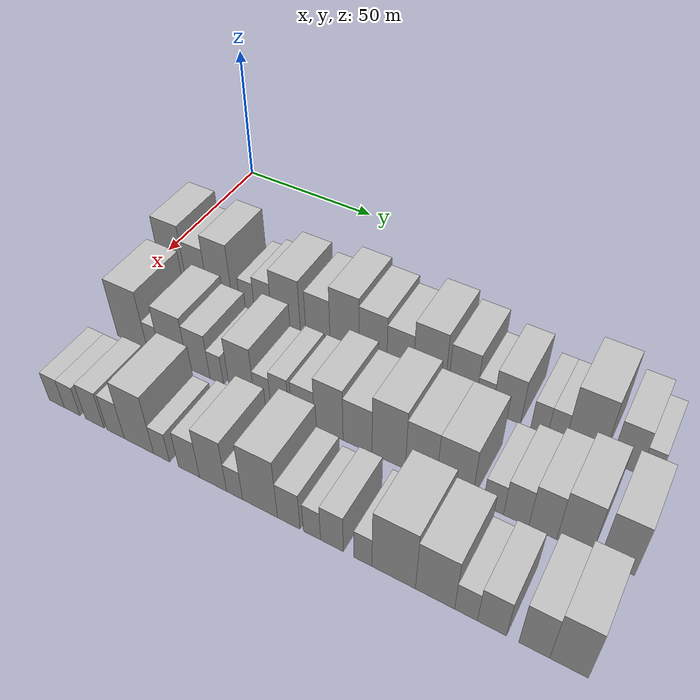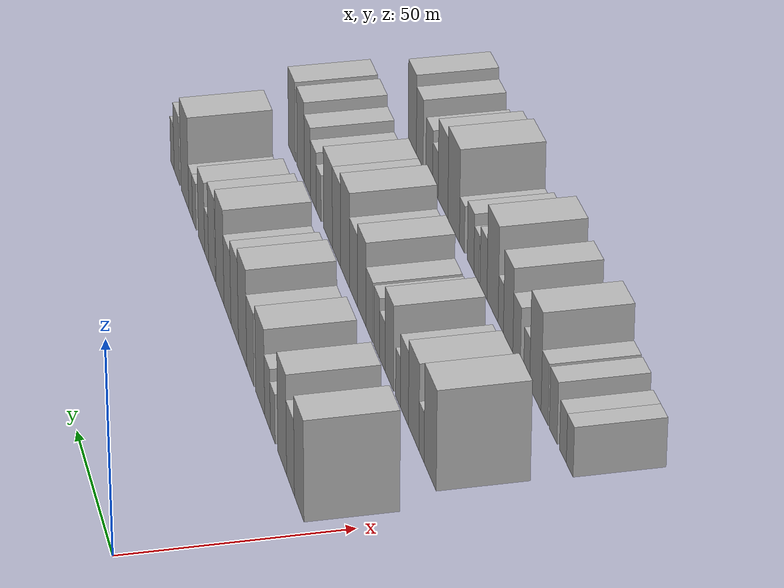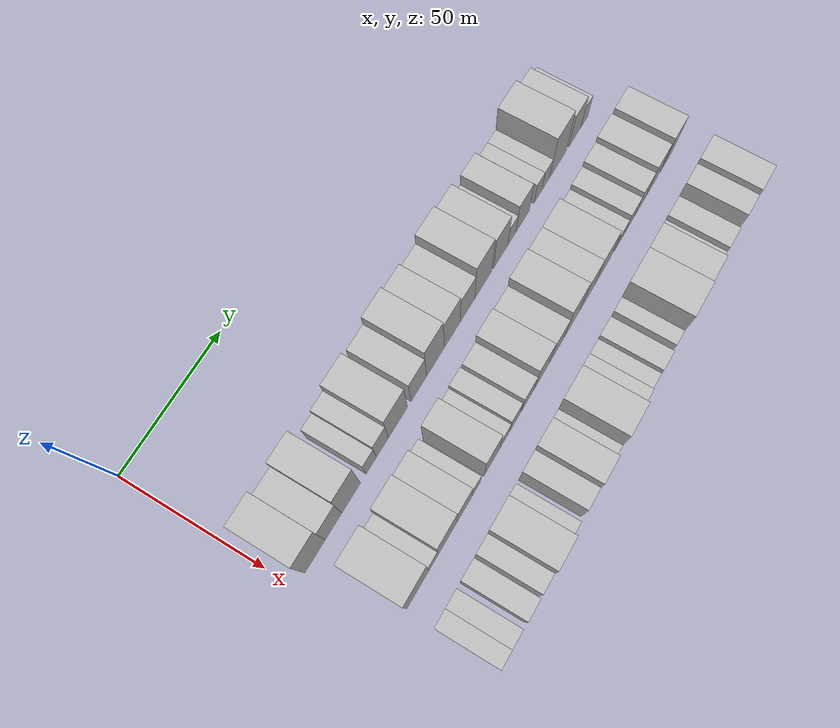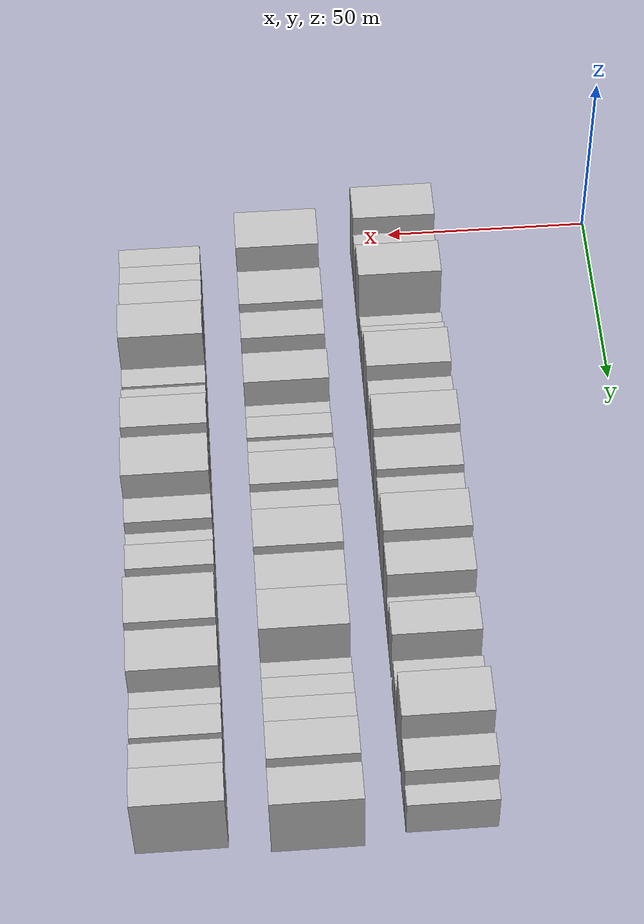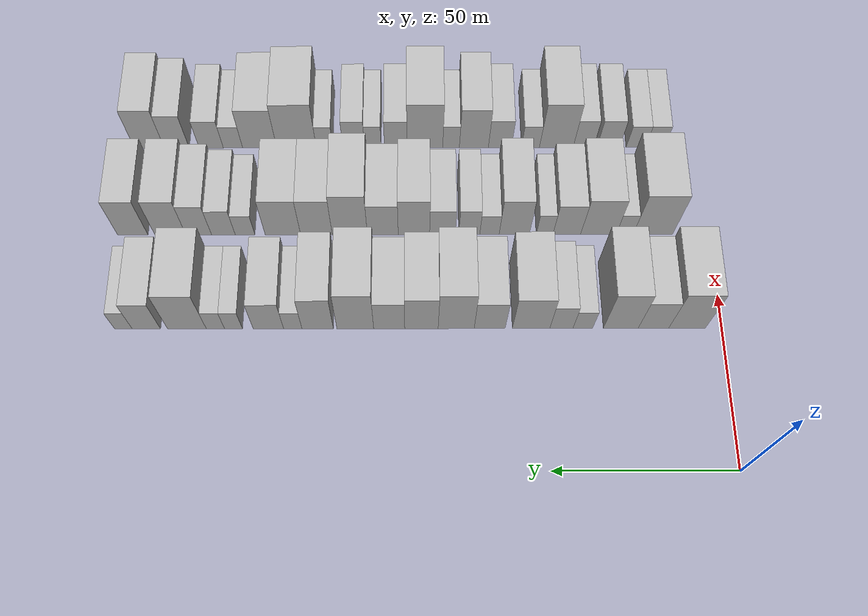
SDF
<sdf version="1.6">
 <world name="default">
  <model name="building_40">
   <static>1</static>
   <pose>50.0000 9.7776 0 0.000000 0.000000 0.000000</pose>
   <link name="link">
    <pose>0 0 12.00 0 0 0</pose>
    <collision name="collision"><geometry><box><size>20.0000 10.2907 24.0000</size></box></geometry></collision>
    <visual name="visual">
     <cast_shadows>0</cast_shadows>
     <geometry><box><size>20.0000 10.2907 24.0000</size></box></geometry>
     <material>
      <script>
       <uri>model://HANNAS_wall/materials/scripts</uri>
       <uri>model://HANNAS_wall/materials/textures</uri>
       <name>vrc/HANNAS_wall</name>
      </script>
     </material>
    </visual>
   </link>
  </model>
  <model name="building_41">
   <static>1</static>
   <pose>50.0000 19.1825 0 0.000000 0.000000 0.000000</pose>
   <link name="link">
    <pose>0 0 9.00 0 0 0</pose>
    <collision name="collision"><geometry><box><size>20.0000 8.5192 18.0000</size></box></geometry></collision>
    <visual name="visual">
     <cast_shadows>0</cast_shadows>
     <geometry><box><size>20.0000 8.5192 18.0000</size></box></geometry>
     <material>
      <script>
       <uri>model://HANNAS_wall/materials/scripts</uri>
       <uri>model://HANNAS_wall/materials/textures</uri>
       <name>vrc/HANNAS_wall</name>
      </script>
     </material>
    </visual>
   </link>
  </model>
  <model name="building_42">
   <static>1</static>
   <pose>50.0000 28.3160 0 0.000000 0.000000 0.000000</pose>
   <link name="link">
    <pose>0 0 12.00 0 0 0</pose>
    <collision name="collision"><geometry><box><size>20.0000 9.7476 24.0000</size></box></geometry></collision>
    <visual name="visual">
     <cast_shadows>0</cast_shadows>
     <geometry><box><size>20.0000 9.7476 24.0000</size></box></geometry>
     <material>
      <script>
       <uri>model://HANNAS_wall/materials/scripts</uri>
       <uri>model://HANNAS_wall/materials/textures</uri>
       <name>vrc/HANNAS_wall</name>
      </script>
     </material>
    </visual>
   </link>
  </model>
  <model name="building_43">
   <static>1</static>
   <pose>50.0000 38.9368 0 0.000000 0.000000 0.000000</pose>
   <link name="link">
    <pose>0 0 6.00 0 0 0</pose>
    <collision name="collision"><geometry><box><size>20.0000 5.4942 12.0000</size></box></geometry></collision>
    <visual name="visual">
     <cast_shadows>0</cast_shadows>
     <geometry><box><size>20.0000 5.4942 12.0000</size></box></geometry>
     <material>
      <script>
       <uri>model://HANNAS_wall/materials/scripts</uri>
       <uri>model://HANNAS_wall/materials/textures</uri>
       <name>vrc/HANNAS_wall</name>
      </script>
     </material>
    </visual>
   </link>
  </model>
  <model name="building_44">
   <static>1</static>
   <pose>50.0000 44.9304 0 0.000000 0.000000 0.000000</pose>
   <link name="link">
    <pose>0 0 7.50 0 0 0</pose>
    <collision name="collision"><geometry><box><size>20.0000 6.4929 15.0000</size></box></geometry></collision>
    <visual name="visual">
     <cast_shadows>0</cast_shadows>
     <geometry><box><size>20.0000 6.4929 15.0000</size></box></geometry>
     <material>
      <script>
       <uri>model://HANNAS_wall/materials/scripts</uri>
       <uri>model://HANNAS_wall/materials/textures</uri>
       <name>vrc/HANNAS_wall</name>
      </script>
     </material>
    </visual>
   </link>
  </model>
  <model name="building_45">
   <static>1</static>
   <pose>50.0000 53.4059 0 0.000000 0.000000 0.000000</pose>
   <link name="link">
    <pose>0 0 10.50 0 0 0</pose>
    <collision name="collision"><geometry><box><size>20.0000 10.4582 21.0000</size></box></geometry></collision>
    <visual name="visual">
     <cast_shadows>0</cast_shadows>
     <geometry><box><size>20.0000 10.4582 21.0000</size></box></geometry>
     <material>
      <script>
       <uri>model://HANNAS_wall/materials/scripts</uri>
       <uri>model://HANNAS_wall/materials/textures</uri>
       <name>vrc/HANNAS_wall</name>
      </script>
     </material>
    </visual>
   </link>
  </model>
  <model name="building_46">
   <static>1</static>
   <pose>50.0000 64.9694 0 0.000000 0.000000 0.000000</pose>
   <link name="link">
    <pose>0 0 9.00 0 0 0</pose>
    <collision name="collision"><geometry><box><size>20.0000 8.6687 18.0000</size></box></geometry></collision>
    <visual name="visual">
     <cast_shadows>0</cast_shadows>
     <geometry><box><size>20.0000 8.6687 18.0000</size></box></geometry>
     <material>
      <script>
       <uri>model://HANNAS_wall/materials/scripts</uri>
       <uri>model://HANNAS_wall/materials/textures</uri>
       <name>vrc/HANNAS_wall</name>
      </script>
     </material>
    </visual>
   </link>
  </model>
  <model name="building_47">
   <static>1</static>
   <pose>50.0000 74.3400 0 0.000000 0.000000 0.000000</pose>
   <link name="link">
    <pose>0 0 12.00 0 0 0</pose>
    <collision name="collision"><geometry><box><size>20.0000 10.0726 24.0000</size></box></geometry></collision>
    <visual name="visual">
     <cast_shadows>0</cast_shadows>
     <geometry><box><size>20.0000 10.0726 24.0000</size></box></geometry>
     <material>
      <script>
       <uri>model://HANNAS_wall/materials/scripts</uri>
       <uri>model://HANNAS_wall/materials/textures</uri>
       <name>vrc/HANNAS_wall</name>
      </script>
     </material>
    </visual>
   </link>
  </model>
  <model name="building_48">
   <static>1</static>
   <pose>50.0000 84.0408 0 0.000000 0.000000 0.000000</pose>
   <link name="link">
    <pose>0 0 10.50 0 0 0</pose>
    <collision name="collision"><geometry><box><size>20.0000 9.3290 21.0000</size></box></geometry></collision>
    <visual name="visual">
     <cast_shadows>0</cast_shadows>
     <geometry><box><size>20.0000 9.3290 21.0000</size></box></geometry>
     <material>
      <script>
       <uri>model://HANNAS_wall/materials/scripts</uri>
       <uri>model://HANNAS_wall/materials/textures</uri>
       <name>vrc/HANNAS_wall</name>
      </script>
     </material>
    </visual>
   </link>
  </model>
  <model name="building_49">
   <static>1</static>
   <pose>50.0000 93.0449 0 0.000000 0.000000 0.000000</pose>
   <link name="link">
    <pose>0 0 9.00 0 0 0</pose>
    <collision name="collision"><geometry><box><size>20.0000 8.6791 18.0000</size></box></geometry></collision>
    <visual name="visual">
     <cast_shadows>0</cast_shadows>
     <geometry><box><size>20.0000 8.6791 18.0000</size></box></geometry>
     <material>
      <script>
       <uri>model://HANNAS_wall/materials/scripts</uri>
       <uri>model://HANNAS_wall/materials/textures</uri>
       <name>vrc/HANNAS_wall</name>
      </script>
     </material>
    </visual>
   </link>
  </model>
  <model name="building_50">
   <static>1</static>
   <pose>50.0000 102.5092 0 0.000000 0.000000 0.000000</pose>
   <link name="link">
    <pose>0 0 12.00 0 0 0</pose>
    <collision name="collision"><geometry><box><size>20.0000 10.2495 24.0000</size></box></geometry></collision>
    <visual name="visual">
     <cast_shadows>0</cast_shadows>
     <geometry><box><size>20.0000 10.2495 24.0000</size></box></geometry>
     <material>
      <script>
       <uri>model://HANNAS_wall/materials/scripts</uri>
       <uri>model://HANNAS_wall/materials/textures</uri>
       <name>vrc/HANNAS_wall</name>
      </script>
     </material>
    </visual>
   </link>
  </model>
  <model name="building_51">
   <static>1</static>
   <pose>50.0000 113.0198 0 0.000000 0.000000 0.000000</pose>
   <link name="link">
    <pose>0 0 10.50 0 0 0</pose>
    <collision name="collision"><geometry><box><size>20.0000 8.7718 21.0000</size></box></geometry></collision>
    <visual name="visual">
     <cast_shadows>0</cast_shadows>
     <geometry><box><size>20.0000 8.7718 21.0000</size></box></geometry>
     <material>
      <script>
       <uri>model://HANNAS_wall/materials/scripts</uri>
       <uri>model://HANNAS_wall/materials/textures</uri>
       <name>vrc/HANNAS_wall</name>
      </script>
     </material>
    </visual>
   </link>
  </model>
  <model name="building_52">
   <static>1</static>
   <pose>50.0000 119.9617 0 0.000000 0.000000 0.000000</pose>
   <link name="link">
    <pose>0 0 6.00 0 0 0</pose>
    <collision name="collision"><geometry><box><size>20.0000 5.1119 12.0000</size></box></geometry></collision>
    <visual name="visual">
     <cast_shadows>0</cast_shadows>
     <geometry><box><size>20.0000 5.1119 12.0000</size></box></geometry>
     <material>
      <script>
       <uri>model://HANNAS_wall/materials/scripts</uri>
       <uri>model://HANNAS_wall/materials/textures</uri>
       <name>vrc/HANNAS_wall</name>
      </script>
     </material>
    </visual>
   </link>
  </model>
  <model name="building_53">
   <static>1</static>
   <pose>50.0000 126.7689 0 0.000000 0.000000 0.000000</pose>
   <link name="link">
    <pose>0 0 9.00 0 0 0</pose>
    <collision name="collision"><geometry><box><size>20.0000 8.5026 18.0000</size></box></geometry></collision>
    <visual name="visual">
     <cast_shadows>0</cast_shadows>
     <geometry><box><size>20.0000 8.5026 18.0000</size></box></geometry>
     <material>
      <script>
       <uri>model://HANNAS_wall/materials/scripts</uri>
       <uri>model://HANNAS_wall/materials/textures</uri>
       <name>vrc/HANNAS_wall</name>
      </script>
     </material>
    </visual>
   </link>
  </model>
  <model name="building_54">
   <static>1</static>
   <pose>50.0000 136.5120 0 0.000000 0.000000 0.000000</pose>
   <link name="link">
    <pose>0 0 6.00 0 0 0</pose>
    <collision name="collision"><geometry><box><size>20.0000 4.9835 12.0000</size></box></geometry></collision>
    <visual name="visual">
     <cast_shadows>0</cast_shadows>
     <geometry><box><size>20.0000 4.9835 12.0000</size></box></geometry>
     <material>
      <script>
       <uri>model://HANNAS_wall/materials/scripts</uri>
       <uri>model://HANNAS_wall/materials/textures</uri>
       <name>vrc/HANNAS_wall</name>
      </script>
     </material>
    </visual>
   </link>
  </model>
  <model name="building_55">
   <static>1</static>
   <pose>50.0000 141.5558 0 0.000000 0.000000 0.000000</pose>
   <link name="link">
    <pose>0 0 6.00 0 0 0</pose>
    <collision name="collision"><geometry><box><size>20.0000 5.1041 12.0000</size></box></geometry></collision>
    <visual name="visual">
     <cast_shadows>0</cast_shadows>
     <geometry><box><size>20.0000 5.1041 12.0000</size></box></geometry>
     <material>
      <script>
       <uri>model://HANNAS_wall/materials/scripts</uri>
       <uri>model://HANNAS_wall/materials/textures</uri>
       <name>vrc/HANNAS_wall</name>
      </script>
     </material>
    </visual>
   </link>
  </model>
  <model name="building_56">
   <static>1</static>
   <pose>50.0000 149.5086 0 0.000000 0.000000 0.000000</pose>
   <link name="link">
    <pose>0 0 12.00 0 0 0</pose>
    <collision name="collision"><geometry><box><size>20.0000 10.8015 24.0000</size></box></geometry></collision>
    <visual name="visual">
     <cast_shadows>0</cast_shadows>
     <geometry><box><size>20.0000 10.8015 24.0000</size></box></geometry>
     <material>
      <script>
       <uri>model://HANNAS_wall/materials/scripts</uri>
       <uri>model://HANNAS_wall/materials/textures</uri>
       <name>vrc/HANNAS_wall</name>
      </script>
     </material>
    </visual>
   </link>
  </model>
  <model name="building_57">
   <static>1</static>
   <pose>50.0000 160.8490 0 0.000000 0.000000 0.000000</pose>
   <link name="link">
    <pose>0 0 9.00 0 0 0</pose>
    <collision name="collision"><geometry><box><size>20.0000 7.8793 18.0000</size></box></geometry></collision>
    <visual name="visual">
     <cast_shadows>0</cast_shadows>
     <geometry><box><size>20.0000 7.8793 18.0000</size></box></geometry>
     <material>
      <script>
       <uri>model://HANNAS_wall/materials/scripts</uri>
       <uri>model://HANNAS_wall/materials/textures</uri>
       <name>vrc/HANNAS_wall</name>
      </script>
     </material>
    </visual>
   </link>
  </model>
  <model name="building_58">
   <static>1</static>
   <pose>50.0000 167.2366 0 0.000000 0.000000 0.000000</pose>
   <link name="link">
    <pose>0 0 6.00 0 0 0</pose>
    <collision name="collision"><geometry><box><size>20.0000 4.8959 12.0000</size></box></geometry></collision>
    <visual name="visual">
     <cast_shadows>0</cast_shadows>
     <geometry><box><size>20.0000 4.8959 12.0000</size></box></geometry>
     <material>
      <script>
       <uri>model://HANNAS_wall/materials/scripts</uri>
       <uri>model://HANNAS_wall/materials/textures</uri>
       <name>vrc/HANNAS_wall</name>
      </script>
     </material>
    </visual>
   </link>
  </model>
  <model name="building_118">
   <static>1</static>
   <pose>79.0000 16.5934 0 0.000000 0.000000 0.000000</pose>
   <link name="link">
    <pose>0 0 12.00 0 0 0</pose>
    <collision name="collision"><geometry><box><size>20.0000 11.5009 24.0000</size></box></geometry></collision>
    <visual name="visual">
     <cast_shadows>0</cast_shadows>
     <geometry><box><size>20.0000 11.5009 24.0000</size></box></geometry>
     <material>
      <script>
       <uri>model://HANNAS_wall/materials/scripts</uri>
       <uri>model://HANNAS_wall/materials/textures</uri>
       <name>vrc/HANNAS_wall</name>
      </script>
     </material>
    </visual>
   </link>
  </model>
  <model name="building_119">
   <static>1</static>
   <pose>79.0000 24.8157 0 0.000000 0.000000 0.000000</pose>
   <link name="link">
    <pose>0 0 6.00 0 0 0</pose>
    <collision name="collision"><geometry><box><size>20.0000 4.9436 12.0000</size></box></geometry></collision>
    <visual name="visual">
     <cast_shadows>0</cast_shadows>
     <geometry><box><size>20.0000 4.9436 12.0000</size></box></geometry>
     <material>
      <script>
       <uri>model://HANNAS_wall/materials/scripts</uri>
       <uri>model://HANNAS_wall/materials/textures</uri>
       <name>vrc/HANNAS_wall</name>
      </script>
     </material>
    </visual>
   </link>
  </model>
  <model name="building_120">
   <static>1</static>
   <pose>79.0000 32.4561 0 0.000000 0.000000 0.000000</pose>
   <link name="link">
    <pose>0 0 10.50 0 0 0</pose>
    <collision name="collision"><geometry><box><size>20.0000 10.3373 21.0000</size></box></geometry></collision>
    <visual name="visual">
     <cast_shadows>0</cast_shadows>
     <geometry><box><size>20.0000 10.3373 21.0000</size></box></geometry>
     <material>
      <script>
       <uri>model://HANNAS_wall/materials/scripts</uri>
       <uri>model://HANNAS_wall/materials/textures</uri>
       <name>vrc/HANNAS_wall</name>
      </script>
     </material>
    </visual>
   </link>
  </model>
  <model name="building_121">
   <static>1</static>
   <pose>79.0000 41.6530 0 0.000000 0.000000 0.000000</pose>
   <link name="link">
    <pose>0 0 9.00 0 0 0</pose>
    <collision name="collision"><geometry><box><size>20.0000 8.0564 18.0000</size></box></geometry></collision>
    <visual name="visual">
     <cast_shadows>0</cast_shadows>
     <geometry><box><size>20.0000 8.0564 18.0000</size></box></geometry>
     <material>
      <script>
       <uri>model://HANNAS_wall/materials/scripts</uri>
       <uri>model://HANNAS_wall/materials/textures</uri>
       <name>vrc/HANNAS_wall</name>
      </script>
     </material>
    </visual>
   </link>
  </model>
  <model name="building_122">
   <static>1</static>
   <pose>79.0000 48.1084 0 0.000000 0.000000 0.000000</pose>
   <link name="link">
    <pose>0 0 6.00 0 0 0</pose>
    <collision name="collision"><geometry><box><size>20.0000 4.8543 12.0000</size></box></geometry></collision>
    <visual name="visual">
     <cast_shadows>0</cast_shadows>
     <geometry><box><size>20.0000 4.8543 12.0000</size></box></geometry>
     <material>
      <script>
       <uri>model://HANNAS_wall/materials/scripts</uri>
       <uri>model://HANNAS_wall/materials/textures</uri>
       <name>vrc/HANNAS_wall</name>
      </script>
     </material>
    </visual>
   </link>
  </model>
  <model name="building_123">
   <static>1</static>
   <pose>79.0000 56.9386 0 0.000000 0.000000 0.000000</pose>
   <link name="link">
    <pose>0 0 10.50 0 0 0</pose>
    <collision name="collision"><geometry><box><size>20.0000 8.8061 21.0000</size></box></geometry></collision>
    <visual name="visual">
     <cast_shadows>0</cast_shadows>
     <geometry><box><size>20.0000 8.8061 21.0000</size></box></geometry>
     <material>
      <script>
       <uri>model://HANNAS_wall/materials/scripts</uri>
       <uri>model://HANNAS_wall/materials/textures</uri>
       <name>vrc/HANNAS_wall</name>
      </script>
     </material>
    </visual>
   </link>
  </model>
  <model name="building_124">
   <static>1</static>
   <pose>79.0000 64.1504 0 0.000000 0.000000 0.000000</pose>
   <link name="link">
    <pose>0 0 6.00 0 0 0</pose>
    <collision name="collision"><geometry><box><size>20.0000 5.6175 12.0000</size></box></geometry></collision>
    <visual name="visual">
     <cast_shadows>0</cast_shadows>
     <geometry><box><size>20.0000 5.6175 12.0000</size></box></geometry>
     <material>
      <script>
       <uri>model://HANNAS_wall/materials/scripts</uri>
       <uri>model://HANNAS_wall/materials/textures</uri>
       <name>vrc/HANNAS_wall</name>
      </script>
     </material>
    </visual>
   </link>
  </model>
  <model name="building_125">
   <static>1</static>
   <pose>79.0000 70.0178 0 0.000000 0.000000 0.000000</pose>
   <link name="link">
    <pose>0 0 7.50 0 0 0</pose>
    <collision name="collision"><geometry><box><size>20.0000 6.1174 15.0000</size></box></geometry></collision>
    <visual name="visual">
     <cast_shadows>0</cast_shadows>
     <geometry><box><size>20.0000 6.1174 15.0000</size></box></geometry>
     <material>
      <script>
       <uri>model://HANNAS_wall/materials/scripts</uri>
       <uri>model://HANNAS_wall/materials/textures</uri>
       <name>vrc/HANNAS_wall</name>
      </script>
     </material>
    </visual>
   </link>
  </model>
  <model name="building_126">
   <static>1</static>
   <pose>79.0000 77.8075 0 0.000000 0.000000 0.000000</pose>
   <link name="link">
    <pose>0 0 7.50 0 0 0</pose>
    <collision name="collision"><geometry><box><size>20.0000 7.4620 15.0000</size></box></geometry></collision>
    <visual name="visual">
     <cast_shadows>0</cast_shadows>
     <geometry><box><size>20.0000 7.4620 15.0000</size></box></geometry>
     <material>
      <script>
       <uri>model://HANNAS_wall/materials/scripts</uri>
       <uri>model://HANNAS_wall/materials/textures</uri>
       <name>vrc/HANNAS_wall</name>
      </script>
     </material>
    </visual>
   </link>
  </model>
  <model name="building_127">
   <static>1</static>
   <pose>79.0000 86.0922 0 0.000000 0.000000 0.000000</pose>
   <link name="link">
    <pose>0 0 10.50 0 0 0</pose>
    <collision name="collision"><geometry><box><size>20.0000 9.1073 21.0000</size></box></geometry></collision>
    <visual name="visual">
     <cast_shadows>0</cast_shadows>
     <geometry><box><size>20.0000 9.1073 21.0000</size></box></geometry>
     <material>
      <script>
       <uri>model://HANNAS_wall/materials/scripts</uri>
       <uri>model://HANNAS_wall/materials/textures</uri>
       <name>vrc/HANNAS_wall</name>
      </script>
     </material>
    </visual>
   </link>
  </model>
  <model name="building_128">
   <static>1</static>
   <pose>79.0000 95.1321 0 0.000000 0.000000 0.000000</pose>
   <link name="link">
    <pose>0 0 9.00 0 0 0</pose>
    <collision name="collision"><geometry><box><size>20.0000 8.9725 18.0000</size></box></geometry></collision>
    <visual name="visual">
     <cast_shadows>0</cast_shadows>
     <geometry><box><size>20.0000 8.9725 18.0000</size></box></geometry>
     <material>
      <script>
       <uri>model://HANNAS_wall/materials/scripts</uri>
       <uri>model://HANNAS_wall/materials/textures</uri>
       <name>vrc/HANNAS_wall</name>
      </script>
     </material>
    </visual>
   </link>
  </model>
  <model name="building_129">
   <static>1</static>
   <pose>79.0000 104.7010 0 0.000000 0.000000 0.000000</pose>
   <link name="link">
    <pose>0 0 12.00 0 0 0</pose>
    <collision name="collision"><geometry><box><size>20.0000 10.1653 24.0000</size></box></geometry></collision>
    <visual name="visual">
     <cast_shadows>0</cast_shadows>
     <geometry><box><size>20.0000 10.1653 24.0000</size></box></geometry>
     <material>
      <script>
       <uri>model://HANNAS_wall/materials/scripts</uri>
       <uri>model://HANNAS_wall/materials/textures</uri>
       <name>vrc/HANNAS_wall</name>
      </script>
     </material>
    </visual>
   </link>
  </model>
  <model name="building_130">
   <static>1</static>
   <pose>79.0000 114.3850 0 0.000000 0.000000 0.000000</pose>
   <link name="link">
    <pose>0 0 10.50 0 0 0</pose>
    <collision name="collision"><geometry><box><size>20.0000 9.2029 21.0000</size></box></geometry></collision>
    <visual name="visual">
     <cast_shadows>0</cast_shadows>
     <geometry><box><size>20.0000 9.2029 21.0000</size></box></geometry>
     <material>
      <script>
       <uri>model://HANNAS_wall/materials/scripts</uri>
       <uri>model://HANNAS_wall/materials/textures</uri>
       <name>vrc/HANNAS_wall</name>
      </script>
     </material>
    </visual>
   </link>
  </model>
  <model name="building_131">
   <static>1</static>
   <pose>79.0000 124.1394 0 0.000000 0.000000 0.000000</pose>
   <link name="link">
    <pose>0 0 10.50 0 0 0</pose>
    <collision name="collision"><geometry><box><size>20.0000 10.3058 21.0000</size></box></geometry></collision>
    <visual name="visual">
     <cast_shadows>0</cast_shadows>
     <geometry><box><size>20.0000 10.3058 21.0000</size></box></geometry>
     <material>
      <script>
       <uri>model://HANNAS_wall/materials/scripts</uri>
       <uri>model://HANNAS_wall/materials/textures</uri>
       <name>vrc/HANNAS_wall</name>
      </script>
     </material>
    </visual>
   </link>
  </model>
  <model name="building_132">
   <static>1</static>
   <pose>79.0000 135.1444 0 0.000000 0.000000 0.000000</pose>
   <link name="link">
    <pose>0 0 6.00 0 0 0</pose>
    <collision name="collision"><geometry><box><size>20.0000 5.7042 12.0000</size></box></geometry></collision>
    <visual name="visual">
     <cast_shadows>0</cast_shadows>
     <geometry><box><size>20.0000 5.7042 12.0000</size></box></geometry>
     <material>
      <script>
       <uri>model://HANNAS_wall/materials/scripts</uri>
       <uri>model://HANNAS_wall/materials/textures</uri>
       <name>vrc/HANNAS_wall</name>
      </script>
     </material>
    </visual>
   </link>
  </model>
  <model name="building_133">
   <static>1</static>
   <pose>79.0000 141.4276 0 0.000000 0.000000 0.000000</pose>
   <link name="link">
    <pose>0 0 7.50 0 0 0</pose>
    <collision name="collision"><geometry><box><size>20.0000 6.8623 15.0000</size></box></geometry></collision>
    <visual name="visual">
     <cast_shadows>0</cast_shadows>
     <geometry><box><size>20.0000 6.8623 15.0000</size></box></geometry>
     <material>
      <script>
       <uri>model://HANNAS_wall/materials/scripts</uri>
       <uri>model://HANNAS_wall/materials/textures</uri>
       <name>vrc/HANNAS_wall</name>
      </script>
     </material>
    </visual>
   </link>
  </model>
  <model name="building_134">
   <static>1</static>
   <pose>79.0000 148.5829 0 0.000000 0.000000 0.000000</pose>
   <link name="link">
    <pose>0 0 9.00 0 0 0</pose>
    <collision name="collision"><geometry><box><size>20.0000 7.4484 18.0000</size></box></geometry></collision>
    <visual name="visual">
     <cast_shadows>0</cast_shadows>
     <geometry><box><size>20.0000 7.4484 18.0000</size></box></geometry>
     <material>
      <script>
       <uri>model://HANNAS_wall/materials/scripts</uri>
       <uri>model://HANNAS_wall/materials/textures</uri>
       <name>vrc/HANNAS_wall</name>
      </script>
     </material>
    </visual>
   </link>
  </model>
  <model name="building_135">
   <static>1</static>
   <pose>79.0000 156.8227 0 0.000000 0.000000 0.000000</pose>
   <link name="link">
    <pose>0 0 10.50 0 0 0</pose>
    <collision name="collision"><geometry><box><size>20.0000 9.0311 21.0000</size></box></geometry></collision>
    <visual name="visual">
     <cast_shadows>0</cast_shadows>
     <geometry><box><size>20.0000 9.0311 21.0000</size></box></geometry>
     <material>
      <script>
       <uri>model://HANNAS_wall/materials/scripts</uri>
       <uri>model://HANNAS_wall/materials/textures</uri>
       <name>vrc/HANNAS_wall</name>
      </script>
     </material>
    </visual>
   </link>
  </model>
  <model name="building_136">
   <static>1</static>
   <pose>79.0000 167.7373 0 0.000000 0.000000 0.000000</pose>
   <link name="link">
    <pose>0 0 10.50 0 0 0</pose>
    <collision name="collision"><geometry><box><size>20.0000 8.7983 21.0000</size></box></geometry></collision>
    <visual name="visual">
     <cast_shadows>0</cast_shadows>
     <geometry><box><size>20.0000 8.7983 21.0000</size></box></geometry>
     <material>
      <script>
       <uri>model://HANNAS_wall/materials/scripts</uri>
       <uri>model://HANNAS_wall/materials/textures</uri>
       <name>vrc/HANNAS_wall</name>
      </script>
     </material>
    </visual>
   </link>
  </model>
  <model name="building_191">
   <static>1</static>
   <pose>108.0000 13.2584 0 0.000000 0.000000 0.000000</pose>
   <link name="link">
    <pose>0 0 6.00 0 0 0</pose>
    <collision name="collision"><geometry><box><size>20.0000 5.7246 12.0000</size></box></geometry></collision>
    <visual name="visual">
     <cast_shadows>0</cast_shadows>
     <geometry><box><size>20.0000 5.7246 12.0000</size></box></geometry>
     <material>
      <script>
       <uri>model://HANNAS_wall/materials/scripts</uri>
       <uri>model://HANNAS_wall/materials/textures</uri>
       <name>vrc/HANNAS_wall</name>
      </script>
     </material>
    </visual>
   </link>
  </model>
  <model name="building_192">
   <static>1</static>
   <pose>108.0000 19.0383 0 0.000000 0.000000 0.000000</pose>
   <link name="link">
    <pose>0 0 6.00 0 0 0</pose>
    <collision name="collision"><geometry><box><size>20.0000 5.8352 12.0000</size></box></geometry></collision>
    <visual name="visual">
     <cast_shadows>0</cast_shadows>
     <geometry><box><size>20.0000 5.8352 12.0000</size></box></geometry>
     <material>
      <script>
       <uri>model://HANNAS_wall/materials/scripts</uri>
       <uri>model://HANNAS_wall/materials/textures</uri>
       <name>vrc/HANNAS_wall</name>
      </script>
     </material>
    </visual>
   </link>
  </model>
  <model name="building_193">
   <static>1</static>
   <pose>108.0000 27.3622 0 0.000000 0.000000 0.000000</pose>
   <link name="link">
    <pose>0 0 7.50 0 0 0</pose>
    <collision name="collision"><geometry><box><size>20.0000 6.8128 15.0000</size></box></geometry></collision>
    <visual name="visual">
     <cast_shadows>0</cast_shadows>
     <geometry><box><size>20.0000 6.8128 15.0000</size></box></geometry>
     <material>
      <script>
       <uri>model://HANNAS_wall/materials/scripts</uri>
       <uri>model://HANNAS_wall/materials/textures</uri>
       <name>vrc/HANNAS_wall</name>
      </script>
     </material>
    </visual>
   </link>
  </model>
  <model name="building_194">
   <static>1</static>
   <pose>108.0000 34.8701 0 0.000000 0.000000 0.000000</pose>
   <link name="link">
    <pose>0 0 7.50 0 0 0</pose>
    <collision name="collision"><geometry><box><size>20.0000 6.2029 15.0000</size></box></geometry></collision>
    <visual name="visual">
     <cast_shadows>0</cast_shadows>
     <geometry><box><size>20.0000 6.2029 15.0000</size></box></geometry>
     <material>
      <script>
       <uri>model://HANNAS_wall/materials/scripts</uri>
       <uri>model://HANNAS_wall/materials/textures</uri>
       <name>vrc/HANNAS_wall</name>
      </script>
     </material>
    </visual>
   </link>
  </model>
  <model name="building_195">
   <static>1</static>
   <pose>108.0000 43.0685 0 0.000000 0.000000 0.000000</pose>
   <link name="link">
    <pose>0 0 12.00 0 0 0</pose>
    <collision name="collision"><geometry><box><size>20.0000 10.1941 24.0000</size></box></geometry></collision>
    <visual name="visual">
     <cast_shadows>0</cast_shadows>
     <geometry><box><size>20.0000 10.1941 24.0000</size></box></geometry>
     <material>
      <script>
       <uri>model://HANNAS_wall/materials/scripts</uri>
       <uri>model://HANNAS_wall/materials/textures</uri>
       <name>vrc/HANNAS_wall</name>
      </script>
     </material>
    </visual>
   </link>
  </model>
  <model name="building_196">
   <static>1</static>
   <pose>108.0000 50.8727 0 0.000000 0.000000 0.000000</pose>
   <link name="link">
    <pose>0 0 6.00 0 0 0</pose>
    <collision name="collision"><geometry><box><size>20.0000 5.4143 12.0000</size></box></geometry></collision>
    <visual name="visual">
     <cast_shadows>0</cast_shadows>
     <geometry><box><size>20.0000 5.4143 12.0000</size></box></geometry>
     <material>
      <script>
       <uri>model://HANNAS_wall/materials/scripts</uri>
       <uri>model://HANNAS_wall/materials/textures</uri>
       <name>vrc/HANNAS_wall</name>
      </script>
     </material>
    </visual>
   </link>
  </model>
  <model name="building_197">
   <static>1</static>
   <pose>108.0000 60.0712 0 0.000000 0.000000 0.000000</pose>
   <link name="link">
    <pose>0 0 7.50 0 0 0</pose>
    <collision name="collision"><geometry><box><size>20.0000 6.9828 15.0000</size></box></geometry></collision>
    <visual name="visual">
     <cast_shadows>0</cast_shadows>
     <geometry><box><size>20.0000 6.9828 15.0000</size></box></geometry>
     <material>
      <script>
       <uri>model://HANNAS_wall/materials/scripts</uri>
       <uri>model://HANNAS_wall/materials/textures</uri>
       <name>vrc/HANNAS_wall</name>
      </script>
     </material>
    </visual>
   </link>
  </model>
  <model name="building_198">
   <static>1</static>
   <pose>108.0000 67.9488 0 0.000000 0.000000 0.000000</pose>
   <link name="link">
    <pose>0 0 10.50 0 0 0</pose>
    <collision name="collision"><geometry><box><size>20.0000 8.7723 21.0000</size></box></geometry></collision>
    <visual name="visual">
     <cast_shadows>0</cast_shadows>
     <geometry><box><size>20.0000 8.7723 21.0000</size></box></geometry>
     <material>
      <script>
       <uri>model://HANNAS_wall/materials/scripts</uri>
       <uri>model://HANNAS_wall/materials/textures</uri>
       <name>vrc/HANNAS_wall</name>
      </script>
     </material>
    </visual>
   </link>
  </model>
  <model name="building_199">
   <static>1</static>
   <pose>108.0000 74.8549 0 0.000000 0.000000 0.000000</pose>
   <link name="link">
    <pose>0 0 6.00 0 0 0</pose>
    <collision name="collision"><geometry><box><size>20.0000 5.0399 12.0000</size></box></geometry></collision>
    <visual name="visual">
     <cast_shadows>0</cast_shadows>
     <geometry><box><size>20.0000 5.0399 12.0000</size></box></geometry>
     <material>
      <script>
       <uri>model://HANNAS_wall/materials/scripts</uri>
       <uri>model://HANNAS_wall/materials/textures</uri>
       <name>vrc/HANNAS_wall</name>
      </script>
     </material>
    </visual>
   </link>
  </model>
  <model name="building_200">
   <static>1</static>
   <pose>108.0000 82.7542 0 0.000000 0.000000 0.000000</pose>
   <link name="link">
    <pose>0 0 12.00 0 0 0</pose>
    <collision name="collision"><geometry><box><size>20.0000 10.7587 24.0000</size></box></geometry></collision>
    <visual name="visual">
     <cast_shadows>0</cast_shadows>
     <geometry><box><size>20.0000 10.7587 24.0000</size></box></geometry>
     <material>
      <script>
       <uri>model://HANNAS_wall/materials/scripts</uri>
       <uri>model://HANNAS_wall/materials/textures</uri>
       <name>vrc/HANNAS_wall</name>
      </script>
     </material>
    </visual>
   </link>
  </model>
  <model name="building_201">
   <static>1</static>
   <pose>108.0000 91.5136 0 0.000000 0.000000 0.000000</pose>
   <link name="link">
    <pose>0 0 7.50 0 0 0</pose>
    <collision name="collision"><geometry><box><size>20.0000 6.7601 15.0000</size></box></geometry></collision>
    <visual name="visual">
     <cast_shadows>0</cast_shadows>
     <geometry><box><size>20.0000 6.7601 15.0000</size></box></geometry>
     <material>
      <script>
       <uri>model://HANNAS_wall/materials/scripts</uri>
       <uri>model://HANNAS_wall/materials/textures</uri>
       <name>vrc/HANNAS_wall</name>
      </script>
     </material>
    </visual>
   </link>
  </model>
  <model name="building_202">
   <static>1</static>
   <pose>108.0000 98.4161 0 0.000000 0.000000 0.000000</pose>
   <link name="link">
    <pose>0 0 6.00 0 0 0</pose>
    <collision name="collision"><geometry><box><size>20.0000 5.0449 12.0000</size></box></geometry></collision>
    <visual name="visual">
     <cast_shadows>0</cast_shadows>
     <geometry><box><size>20.0000 5.0449 12.0000</size></box></geometry>
     <material>
      <script>
       <uri>model://HANNAS_wall/materials/scripts</uri>
       <uri>model://HANNAS_wall/materials/textures</uri>
       <name>vrc/HANNAS_wall</name>
      </script>
     </material>
    </visual>
   </link>
  </model>
  <model name="building_203">
   <static>1</static>
   <pose>108.0000 104.2230 0 0.000000 0.000000 0.000000</pose>
   <link name="link">
    <pose>0 0 7.50 0 0 0</pose>
    <collision name="collision"><geometry><box><size>20.0000 6.5690 15.0000</size></box></geometry></collision>
    <visual name="visual">
     <cast_shadows>0</cast_shadows>
     <geometry><box><size>20.0000 6.5690 15.0000</size></box></geometry>
     <material>
      <script>
       <uri>model://HANNAS_wall/materials/scripts</uri>
       <uri>model://HANNAS_wall/materials/textures</uri>
       <name>vrc/HANNAS_wall</name>
      </script>
     </material>
    </visual>
   </link>
  </model>
  <model name="building_204">
   <static>1</static>
   <pose>108.0000 113.0110 0 0.000000 0.000000 0.000000</pose>
   <link name="link">
    <pose>0 0 6.00 0 0 0</pose>
    <collision name="collision"><geometry><box><size>20.0000 5.0070 12.0000</size></box></geometry></collision>
    <visual name="visual">
     <cast_shadows>0</cast_shadows>
     <geometry><box><size>20.0000 5.0070 12.0000</size></box></geometry>
     <material>
      <script>
       <uri>model://HANNAS_wall/materials/scripts</uri>
       <uri>model://HANNAS_wall/materials/textures</uri>
       <name>vrc/HANNAS_wall</name>
      </script>
     </material>
    </visual>
   </link>
  </model>
  <model name="building_205">
   <static>1</static>
   <pose>108.0000 121.4779 0 0.000000 0.000000 0.000000</pose>
   <link name="link">
    <pose>0 0 12.00 0 0 0</pose>
    <collision name="collision"><geometry><box><size>20.0000 11.9268 24.0000</size></box></geometry></collision>
    <visual name="visual">
     <cast_shadows>0</cast_shadows>
     <geometry><box><size>20.0000 11.9268 24.0000</size></box></geometry>
     <material>
      <script>
       <uri>model://HANNAS_wall/materials/scripts</uri>
       <uri>model://HANNAS_wall/materials/textures</uri>
       <name>vrc/HANNAS_wall</name>
      </script>
     </material>
    </visual>
   </link>
  </model>
  <model name="building_206">
   <static>1</static>
   <pose>108.0000 132.5848 0 0.000000 0.000000 0.000000</pose>
   <link name="link">
    <pose>0 0 10.50 0 0 0</pose>
    <collision name="collision"><geometry><box><size>20.0000 10.2871 21.0000</size></box></geometry></collision>
    <visual name="visual">
     <cast_shadows>0</cast_shadows>
     <geometry><box><size>20.0000 10.2871 21.0000</size></box></geometry>
     <material>
      <script>
       <uri>model://HANNAS_wall/materials/scripts</uri>
       <uri>model://HANNAS_wall/materials/textures</uri>
       <name>vrc/HANNAS_wall</name>
      </script>
     </material>
    </visual>
   </link>
  </model>
  <model name="building_207">
   <static>1</static>
   <pose>108.0000 140.6499 0 0.000000 0.000000 0.000000</pose>
   <link name="link">
    <pose>0 0 6.00 0 0 0</pose>
    <collision name="collision"><geometry><box><size>20.0000 5.8429 12.0000</size></box></geometry></collision>
    <visual name="visual">
     <cast_shadows>0</cast_shadows>
     <geometry><box><size>20.0000 5.8429 12.0000</size></box></geometry>
     <material>
      <script>
       <uri>model://HANNAS_wall/materials/scripts</uri>
       <uri>model://HANNAS_wall/materials/textures</uri>
       <name>vrc/HANNAS_wall</name>
      </script>
     </material>
    </visual>
   </link>
  </model>
  <model name="building_208">
   <static>1</static>
   <pose>108.0000 147.2092 0 0.000000 0.000000 0.000000</pose>
   <link name="link">
    <pose>0 0 7.50 0 0 0</pose>
    <collision name="collision"><geometry><box><size>20.0000 7.2757 15.0000</size></box></geometry></collision>
    <visual name="visual">
     <cast_shadows>0</cast_shadows>
     <geometry><box><size>20.0000 7.2757 15.0000</size></box></geometry>
     <material>
      <script>
       <uri>model://HANNAS_wall/materials/scripts</uri>
       <uri>model://HANNAS_wall/materials/textures</uri>
       <name>vrc/HANNAS_wall</name>
      </script>
     </material>
    </visual>
   </link>
  </model>
  <model name="building_209">
   <static>1</static>
   <pose>108.0000 157.5887 0 0.000000 0.000000 0.000000</pose>
   <link name="link">
    <pose>0 0 9.00 0 0 0</pose>
    <collision name="collision"><geometry><box><size>20.0000 7.4833 18.0000</size></box></geometry></collision>
    <visual name="visual">
     <cast_shadows>0</cast_shadows>
     <geometry><box><size>20.0000 7.4833 18.0000</size></box></geometry>
     <material>
      <script>
       <uri>model://HANNAS_wall/materials/scripts</uri>
       <uri>model://HANNAS_wall/materials/textures</uri>
       <name>vrc/HANNAS_wall</name>
      </script>
     </material>
    </visual>
   </link>
  </model>
  <model name="building_210">
   <static>1</static>
   <pose>108.0000 165.8610 0 0.000000 0.000000 0.000000</pose>
   <link name="link">
    <pose>0 0 10.50 0 0 0</pose>
    <collision name="collision"><geometry><box><size>20.0000 9.0614 21.0000</size></box></geometry></collision>
    <visual name="visual">
     <cast_shadows>0</cast_shadows>
     <geometry><box><size>20.0000 9.0614 21.0000</size></box></geometry>
     <material>
      <script>
       <uri>model://HANNAS_wall/materials/scripts</uri>
       <uri>model://HANNAS_wall/materials/textures</uri>
       <name>vrc/HANNAS_wall</name>
      </script>
     </material>
    </visual>
   </link>
  </model>
 </world>
</sdf>
